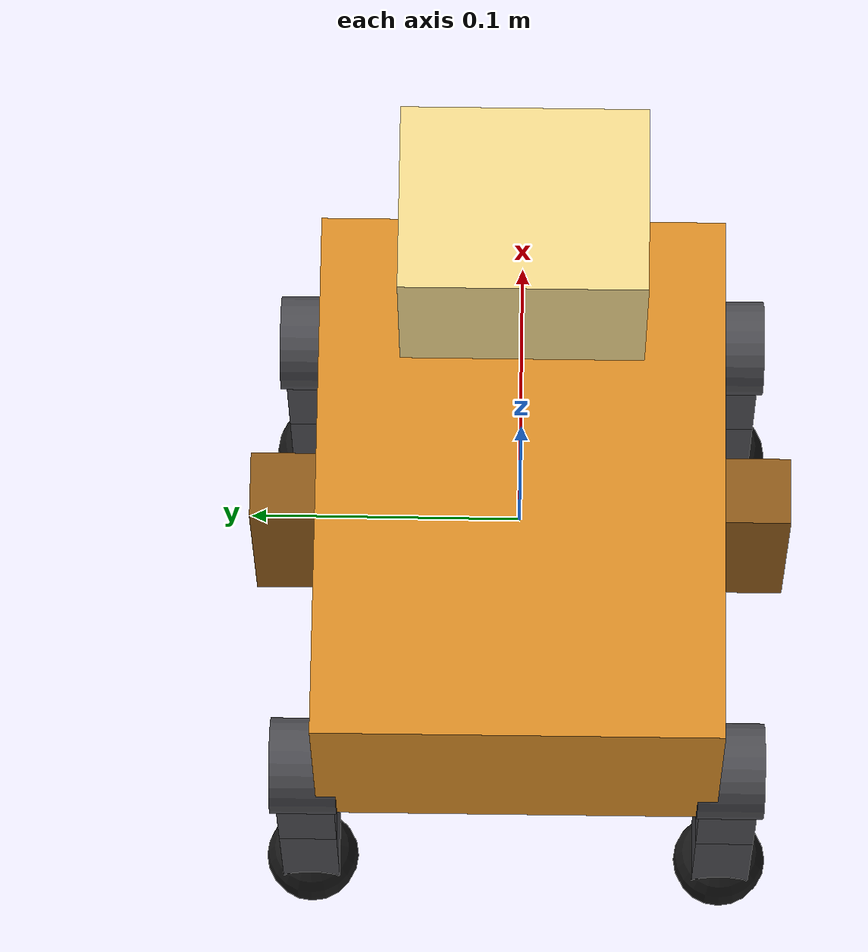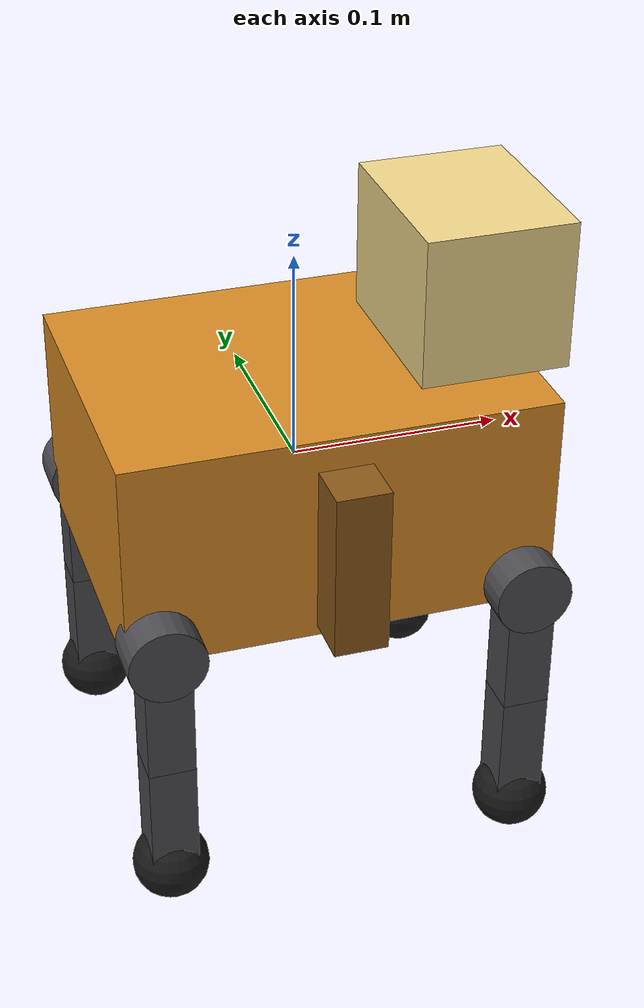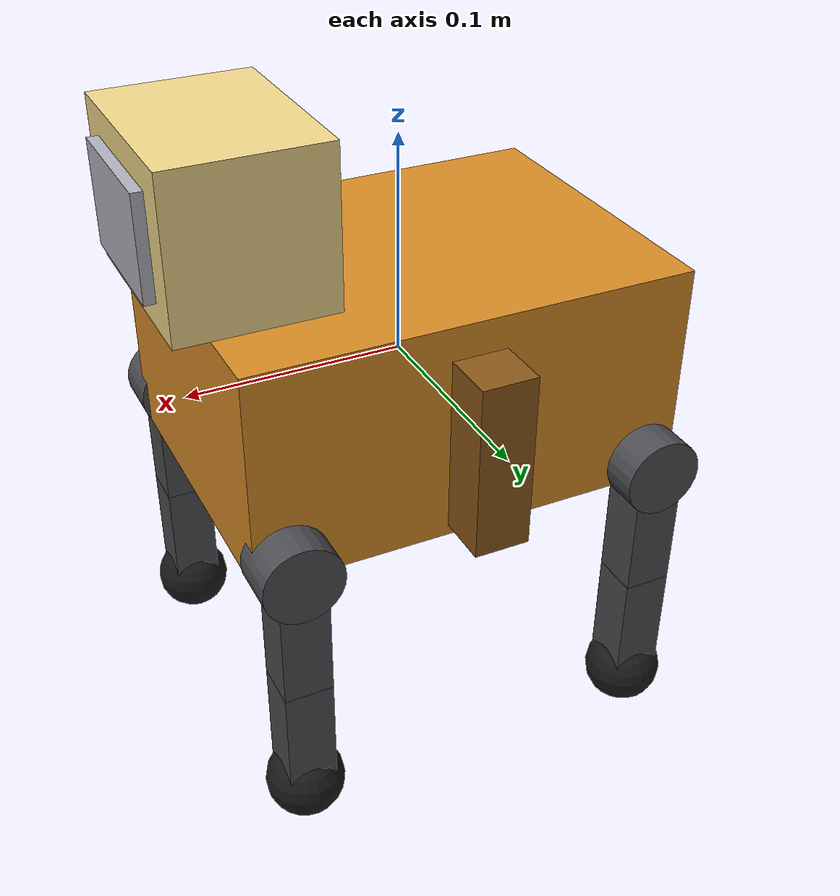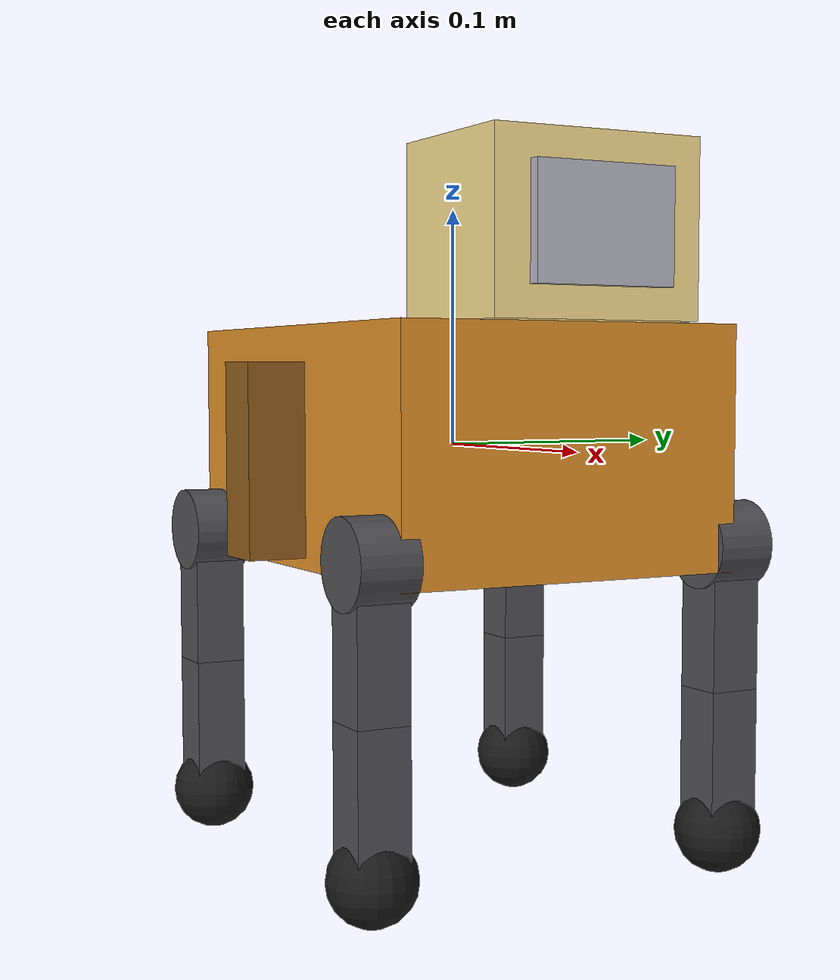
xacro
<?xml version="1.0"?>
<robot name="gizmo" xmlns:xacro="http://www.ros.org/wiki/xacro">

  <xacro:arg name="controllers_yaml" default="/tmp/gizmo_controllers.yaml"/>

  <xacro:include filename="$(find gizmo_description)/urdf/materials.xacro"/>
  <xacro:include filename="$(find gizmo_description)/urdf/leg_macro.xacro"/>

  <!-- Body geometry. -->
  <xacro:property name="body_x" value="0.20"/>
  <xacro:property name="body_y" value="0.15"/>
  <xacro:property name="body_z" value="0.10"/>

  <!-- Leg attachment offsets (relative to body_link). -->
  <xacro:property name="hip_x" value="0.085"/>
  <xacro:property name="hip_y" value="0.080"/>
  <xacro:property name="hip_z" value="-0.04"/>

  <!-- Root link: empty so Gazebo treats it as a free-floating base. -->
  <link name="base_link"/>

  <link name="body_link">
    <inertial>
      <mass value="1.2"/>
      <origin xyz="0 0 0"/>
      <inertia ixx="0.004" iyy="0.006" izz="0.008" ixy="0" ixz="0" iyz="0"/>
    </inertial>
    <visual>
      <geometry><box size="${body_x} ${body_y} ${body_z}"/></geometry>
      <material name="gizmo_body"/>
    </visual>
    <collision>
      <geometry><box size="${body_x} ${body_y} ${body_z}"/></geometry>
    </collision>
  </link>

  <joint name="base_to_body" type="fixed">
    <parent link="base_link"/>
    <child link="body_link"/>
    <origin xyz="0 0 0" rpy="0 0 0"/>
  </joint>

  <!-- Head: pans around Z so Gizmo can look left/right.
       Geometry stays a simple box; real CAD lands later. -->
  <xacro:property name="head_x" value="0.07"/>
  <xacro:property name="head_y" value="0.09"/>
  <xacro:property name="head_z" value="0.07"/>

  <link name="head_link">
    <inertial>
      <mass value="0.15"/>
      <origin xyz="0 0 0"/>
      <inertia ixx="2e-4" iyy="2e-4" izz="2e-4" ixy="0" ixz="0" iyz="0"/>
    </inertial>
    <visual>
      <geometry><box size="${head_x} ${head_y} ${head_z}"/></geometry>
      <material name="gizmo_head"/>
    </visual>
    <collision>
      <geometry><box size="${head_x} ${head_y} ${head_z}"/></geometry>
    </collision>
  </link>

  <joint name="head_pan_joint" type="revolute">
    <parent link="body_link"/>
    <child link="head_link"/>
    <origin xyz="${body_x/2 - 0.02} 0 ${body_z/2 + 0.035}" rpy="0 0 0"/>
    <axis xyz="0 0 1"/>
    <limit lower="-1.5" upper="1.5" effort="2.0" velocity="2.0"/>
    <dynamics damping="0.05" friction="0.01"/>
  </joint>

  <link name="display_link">
    <inertial>
      <mass value="0.01"/>
      <origin xyz="0 0 0"/>
      <inertia ixx="1e-6" iyy="1e-6" izz="1e-6" ixy="0" ixz="0" iyz="0"/>
    </inertial>
    <visual name="display_visual">
      <geometry><box size="0.005 0.06 0.045"/></geometry>
      <material name="gizmo_face"/>
    </visual>
  </link>

  <joint name="display_fixed" type="fixed">
    <parent link="head_link"/>
    <child link="display_link"/>
    <origin xyz="${head_x/2 + 0.0026} 0 0" rpy="0 0 0"/>
  </joint>

  <gazebo reference="display_link">
    <plugin filename="gz-sim-material-color-system"
            name="gz::sim::systems::MaterialColor">
      <topic>/gizmo/face_color</topic>
      <ambient>0.7 0.7 0.75 1</ambient>
      <diffuse>0.7 0.7 0.75 1</diffuse>
      <specular>0.2 0.2 0.2 1</specular>
      <emissive>0.4 0.4 0.45 1</emissive>
    </plugin>
  </gazebo>

  <!-- Four legs. -->
  <xacro:gizmo_leg prefix="front_left"  parent="body_link"
                   x="${ hip_x}" y="${ hip_y}" z="${hip_z}"/>
  <xacro:gizmo_leg prefix="front_right" parent="body_link"
                   x="${ hip_x}" y="${-hip_y}" z="${hip_z}"/>
  <xacro:gizmo_leg prefix="rear_left"   parent="body_link"
                   x="${-hip_x}" y="${ hip_y}" z="${hip_z}"/>
  <xacro:gizmo_leg prefix="rear_right"  parent="body_link"
                   x="${-hip_x}" y="${-hip_y}" z="${hip_z}"/>

  <!-- Arms: one revolute joint each, swings forward/back around Y. -->
  <xacro:macro name="gizmo_arm" params="prefix y_sign">
    <link name="${prefix}_arm_link">
      <inertial>
        <mass value="0.08"/>
        <origin xyz="0 0 -0.04"/>
        <inertia ixx="2e-4" iyy="2e-4" izz="3e-5" ixy="0" ixz="0" iyz="0"/>
      </inertial>
      <visual>
        <origin xyz="0 0 -0.04"/>
        <geometry><box size="0.025 0.025 0.08"/></geometry>
        <material name="gizmo_arm"/>
      </visual>
      <collision>
        <origin xyz="0 0 -0.04"/>
        <geometry><box size="0.025 0.025 0.08"/></geometry>
      </collision>
    </link>

    <joint name="${prefix}_arm_joint" type="revolute">
      <parent link="body_link"/>
      <child link="${prefix}_arm_link"/>
      <origin xyz="0 ${y_sign * (body_y/2 + 0.012)} ${body_z/2 - 0.015}" rpy="0 0 0"/>
      <axis xyz="0 1 0"/>
      <limit lower="-2.5" upper="2.5" effort="3.0" velocity="3.0"/>
      <dynamics damping="0.05" friction="0.01"/>
    </joint>
  </xacro:macro>

  <xacro:gizmo_arm prefix="left"  y_sign="1"/>
  <xacro:gizmo_arm prefix="right" y_sign="-1"/>

  <!-- ros2_control hookup for Gazebo Harmonic via gz_ros2_control. -->
  <xacro:macro name="position_joint" params="name lower upper">
    <joint name="${name}">
      <command_interface name="position">
        <param name="min">${lower}</param>
        <param name="max">${upper}</param>
      </command_interface>
      <state_interface name="position"/>
      <state_interface name="velocity"/>
      <state_interface name="effort"/>
    </joint>
  </xacro:macro>

  <ros2_control name="GizmoSystem" type="system">
    <hardware>
      <plugin>gz_ros2_control/GazeboSimSystem</plugin>
    </hardware>

    <xacro:position_joint name="front_left_hip_joint"   lower="-1.2" upper="1.2"/>
    <xacro:position_joint name="front_left_knee_joint"  lower="-2.2" upper="0.2"/>
    <xacro:position_joint name="front_right_hip_joint"  lower="-1.2" upper="1.2"/>
    <xacro:position_joint name="front_right_knee_joint" lower="-2.2" upper="0.2"/>
    <xacro:position_joint name="rear_left_hip_joint"    lower="-1.2" upper="1.2"/>
    <xacro:position_joint name="rear_left_knee_joint"   lower="-2.2" upper="0.2"/>
    <xacro:position_joint name="rear_right_hip_joint"   lower="-1.2" upper="1.2"/>
    <xacro:position_joint name="rear_right_knee_joint"  lower="-2.2" upper="0.2"/>
    <xacro:position_joint name="left_arm_joint"         lower="-2.5" upper="2.5"/>
    <xacro:position_joint name="right_arm_joint"        lower="-2.5" upper="2.5"/>
    <xacro:position_joint name="head_pan_joint"         lower="-1.5" upper="1.5"/>
  </ros2_control>

  <gazebo>
    <plugin filename="gz_ros2_control-system" name="gz_ros2_control::GazeboSimROS2ControlPlugin">
      <parameters>$(arg controllers_yaml)</parameters>
    </plugin>
  </gazebo>

</robot>

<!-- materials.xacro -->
<robot xmlns:xacro="http://www.ros.org/wiki/xacro">

  <material name="gizmo_body">
    <color rgba="0.85 0.55 0.15 1.0"/>
  </material>

  <material name="gizmo_head">
    <color rgba="0.95 0.85 0.55 1.0"/>
  </material>

  <material name="gizmo_leg">
    <color rgba="0.30 0.30 0.32 1.0"/>
  </material>

  <material name="gizmo_foot">
    <color rgba="0.10 0.10 0.10 1.0"/>
  </material>

  <material name="gizmo_arm">
    <color rgba="0.55 0.35 0.10 1.0"/>
  </material>

  <!-- Initial colour of the face display. The MaterialColor Gazebo
       system retints this material at runtime when /gizmo/face_color
       is published, so the value here is just the boot-time look. -->
  <material name="gizmo_face">
    <color rgba="0.7 0.7 0.75 1.0"/>
  </material>

</robot>

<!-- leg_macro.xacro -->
<robot xmlns:xacro="http://www.ros.org/wiki/xacro">

  <xacro:macro name="gizmo_leg" params="prefix parent x y z">

    <xacro:property name="upper_len" value="0.06"/>
    <xacro:property name="lower_len" value="0.06"/>
    <xacro:property name="leg_w"     value="0.022"/>
    <xacro:property name="leg_d"     value="0.022"/>
    <xacro:property name="hip_r"     value="0.018"/>
    <xacro:property name="foot_r"    value="0.018"/>

    <!-- Hip link: a small cylinder attached at the body corner. -->
    <link name="${prefix}_hip_link">
      <inertial>
        <mass value="0.05"/>
        <origin xyz="0 0 0"/>
        <inertia ixx="1e-5" iyy="1e-5" izz="1e-5" ixy="0" ixz="0" iyz="0"/>
      </inertial>
      <visual>
        <origin xyz="0 0 0" rpy="${pi/2} 0 0"/>
        <geometry><cylinder radius="${hip_r}" length="0.025"/></geometry>
        <material name="gizmo_leg"/>
      </visual>
      <collision>
        <origin xyz="0 0 0" rpy="${pi/2} 0 0"/>
        <geometry><cylinder radius="${hip_r}" length="0.025"/></geometry>
      </collision>
    </link>

    <joint name="${prefix}_hip_fixed" type="fixed">
      <parent link="${parent}"/>
      <child link="${prefix}_hip_link"/>
      <origin xyz="${x} ${y} ${z}" rpy="0 0 0"/>
    </joint>

    <!-- Upper leg: rotates around hip, drops down by upper_len. -->
    <link name="${prefix}_upper_leg_link">
      <inertial>
        <mass value="0.08"/>
        <origin xyz="0 0 ${-upper_len/2}"/>
        <inertia ixx="2e-4" iyy="2e-4" izz="3e-5" ixy="0" ixz="0" iyz="0"/>
      </inertial>
      <visual>
        <origin xyz="0 0 ${-upper_len/2}"/>
        <geometry><box size="${leg_w} ${leg_d} ${upper_len}"/></geometry>
        <material name="gizmo_leg"/>
      </visual>
      <collision>
        <origin xyz="0 0 ${-upper_len/2}"/>
        <geometry><box size="${leg_w} ${leg_d} ${upper_len}"/></geometry>
      </collision>
    </link>

    <joint name="${prefix}_hip_joint" type="revolute">
      <parent link="${prefix}_hip_link"/>
      <child link="${prefix}_upper_leg_link"/>
      <origin xyz="0 0 0" rpy="0 0 0"/>
      <axis xyz="0 1 0"/>
      <limit lower="-1.2" upper="1.2" effort="5.0" velocity="3.0"/>
      <dynamics damping="0.05" friction="0.01"/>
    </joint>

    <!-- Lower leg: rotates at the knee, drops further down. -->
    <link name="${prefix}_lower_leg_link">
      <inertial>
        <mass value="0.05"/>
        <origin xyz="0 0 ${-lower_len/2}"/>
        <inertia ixx="1.5e-4" iyy="1.5e-4" izz="2e-5" ixy="0" ixz="0" iyz="0"/>
      </inertial>
      <visual>
        <origin xyz="0 0 ${-lower_len/2}"/>
        <geometry><box size="${leg_w} ${leg_d} ${lower_len}"/></geometry>
        <material name="gizmo_leg"/>
      </visual>
      <collision>
        <origin xyz="0 0 ${-lower_len/2}"/>
        <geometry><box size="${leg_w} ${leg_d} ${lower_len}"/></geometry>
      </collision>
    </link>

    <joint name="${prefix}_knee_joint" type="revolute">
      <parent link="${prefix}_upper_leg_link"/>
      <child link="${prefix}_lower_leg_link"/>
      <origin xyz="0 0 ${-upper_len}" rpy="0 0 0"/>
      <axis xyz="0 1 0"/>
      <limit lower="-2.2" upper="0.2" effort="5.0" velocity="3.0"/>
      <dynamics damping="0.05" friction="0.01"/>
    </joint>

    <!-- Foot: a small sphere for predictable ground contact. -->
    <link name="${prefix}_foot_link">
      <inertial>
        <mass value="0.02"/>
        <origin xyz="0 0 0"/>
        <inertia ixx="1e-5" iyy="1e-5" izz="1e-5" ixy="0" ixz="0" iyz="0"/>
      </inertial>
      <visual>
        <geometry><sphere radius="${foot_r}"/></geometry>
        <material name="gizmo_foot"/>
      </visual>
      <collision>
        <geometry><sphere radius="${foot_r}"/></geometry>
      </collision>
    </link>

    <joint name="${prefix}_foot_fixed" type="fixed">
      <parent link="${prefix}_lower_leg_link"/>
      <child link="${prefix}_foot_link"/>
      <origin xyz="0 0 ${-lower_len}" rpy="0 0 0"/>
    </joint>

    <!-- Foot friction so it doesn't skate on the ground plane. -->
    <gazebo reference="${prefix}_foot_link">
      <mu1>1.2</mu1>
      <mu2>1.2</mu2>
      <kp>1e6</kp>
      <kd>10</kd>
    </gazebo>

  </xacro:macro>

</robot>
